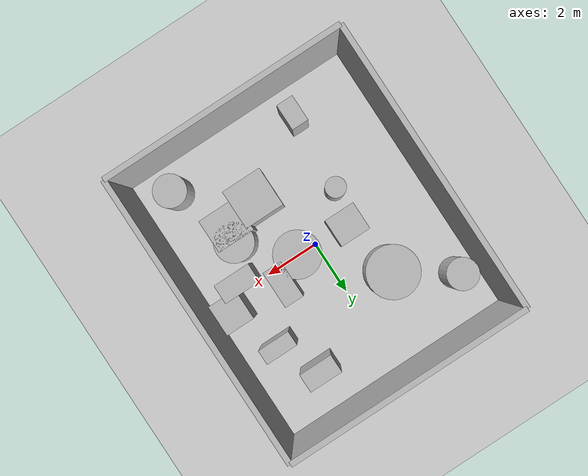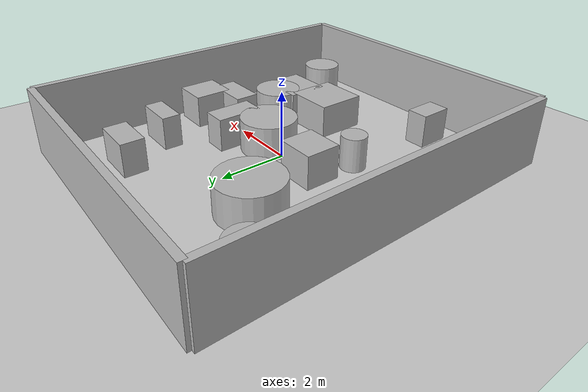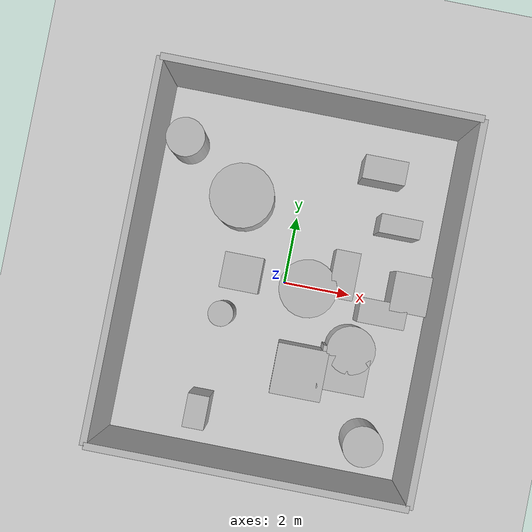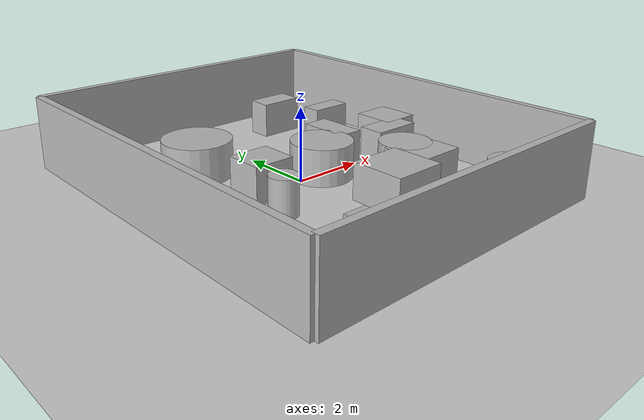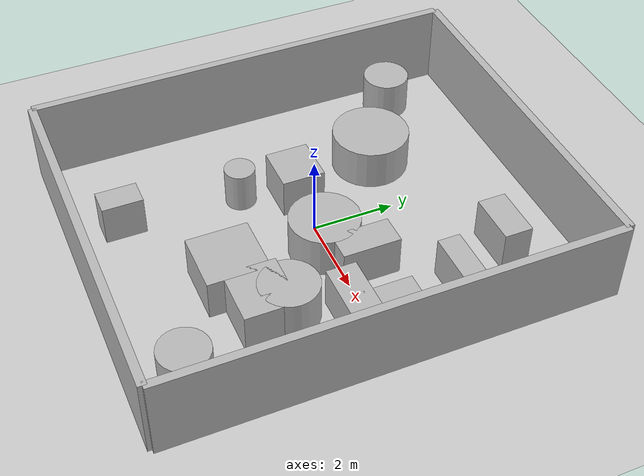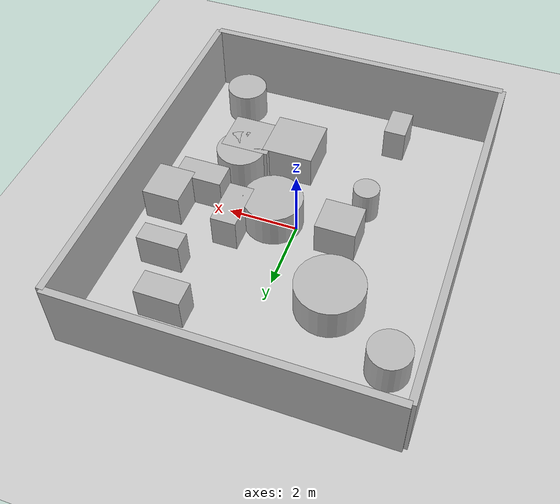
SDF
<?xml version="1.0"?>
<sdf version="1.6">
  <world name="env_13">

    <include><uri>model://ground_plane</uri></include>
    <include><uri>model://sun</uri></include>

    <!-- WALLS -->
    <model name="wall_north"><static>true</static><pose>0 5.346675349737958 1 0 0 0</pose>
      <link name="link"><collision name="collision">
        <geometry><box><size>8.917031790374443 0.2 2</size></box></geometry>
      </collision><visual name="visual">
        <geometry><box><size>8.917031790374443 0.2 2</size></box></geometry>
      </visual></link>
    </model>

    <model name="wall_south"><static>true</static><pose>0 -5.346675349737958 1 0 0 0</pose>
      <link name="link"><collision name="collision">
        <geometry><box><size>8.917031790374443 0.2 2</size></box></geometry>
      </collision><visual name="visual">
        <geometry><box><size>8.917031790374443 0.2 2</size></box></geometry>
      </visual></link>
    </model>

    <model name="wall_east"><static>true</static><pose>4.4585158951872215 0 1 0 0 1.57</pose>
      <link name="link"><collision name="collision">
        <geometry><box><size>10.693350699475916 0.2 2</size></box></geometry>
      </collision><visual name="visual">
        <geometry><box><size>10.693350699475916 0.2 2</size></box></geometry>
      </visual></link>
    </model>

    <model name="wall_west"><static>true</static><pose>-4.4585158951872215 0 1 0 0 1.57</pose>
      <link name="link"><collision name="collision">
        <geometry><box><size>10.693350699475916 0.2 2</size></box></geometry>
      </collision><visual name="visual">
        <geometry><box><size>10.693350699475916 0.2 2</size></box></geometry>
      </visual></link>
    </model>

    <!-- SENSOR -->

    <model name="lidar_sensor">
      <static>true</static>
      <pose>-1.258986035168907 -2.886022029445282 0.4 0 0 0</pose>
      <link name="link">
        <sensor name="lidar" type="ray">
          <pose>0 0 0 0 0 0</pose>
          <visualize>true</visualize>
          <always_on>true</always_on>
          <update_rate>10</update_rate>
          <ray>
            <scan><horizontal>
              <samples>720</samples>
              <resolution>1</resolution>
              <min_angle>-3.14159</min_angle>
              <max_angle>3.14159</max_angle>
            </horizontal></scan>
            <range><min>0.15</min><max>20.0</max><resolution>0.01</resolution></range>
          </ray>
          <plugin name="lidar_plugin" filename="liblidar_plugin.so"/>
        </sensor>
      </link>
    </model>

    <!-- OBSTACLES -->

    <model name="obstacle_0">
      <static>true</static>
      <pose>-1.7746976430160841 -4.114248902695424 0.5 0 0 0</pose>
      <link name="link">
        <collision name="collision">
          <geometry><box><size>0.63 0.98 1.0</size></box></geometry>
        </collision>
        <visual name="visual">
          <geometry><box><size>0.63 0.98 1.0</size></box></geometry>
        </visual>
      </link>
    </model>

    <model name="obstacle_1">
      <static>true</static>
      <pose>0.9118473483718157 -2.4453495250645827 0.5 0 0 0</pose>
      <link name="link">
        <collision name="collision">
          <geometry><box><size>1.48 1.47 1.0</size></box></geometry>
        </collision>
        <visual name="visual">
          <geometry><box><size>1.48 1.47 1.0</size></box></geometry>
        </visual>
      </link>
    </model>

    <model name="obstacle_2">
      <static>true</static>
      <pose>-1.6720200939208603 2.213965612736419 0.5 0 0 0</pose>
      <link name="link">
        <collision name="collision">
          <geometry><cylinder><radius>0.94</radius><length>1.0</length></cylinder></geometry>
        </collision>
        <visual name="visual">
          <geometry><cylinder><radius>0.94</radius><length>1.0</length></cylinder></geometry>
        </visual>
      </link>
    </model>

    <model name="obstacle_3">
      <static>true</static>
      <pose>1.6528817698458287 0.5338300499809208 0.5 0 0 0</pose>
      <link name="link">
        <collision name="collision">
          <geometry><box><size>0.72 1.39 1.0</size></box></geometry>
        </collision>
        <visual name="visual">
          <geometry><box><size>0.72 1.39 1.0</size></box></geometry>
        </visual>
      </link>
    </model>

    <model name="obstacle_4">
      <static>true</static>
      <pose>0.6973834145712763 -0.046349652435988986 0.5 0 0 0</pose>
      <link name="link">
        <collision name="collision">
          <geometry><cylinder><radius>0.84</radius><length>1.0</length></cylinder></geometry>
        </collision>
        <visual name="visual">
          <geometry><cylinder><radius>0.84</radius><length>1.0</length></cylinder></geometry>
        </visual>
      </link>
    </model>

    <model name="obstacle_5">
      <static>true</static>
      <pose>2.9329088423874756 -0.34275506646404885 0.5 0 0 0</pose>
      <link name="link">
        <collision name="collision">
          <geometry><box><size>1.37 0.72 1.0</size></box></geometry>
        </collision>
        <visual name="visual">
          <geometry><box><size>1.37 0.72 1.0</size></box></geometry>
        </visual>
      </link>
    </model>

    <model name="obstacle_6">
      <static>true</static>
      <pose>2.2344879596124265 3.7215861955124607 0.5 0 0 0</pose>
      <link name="link">
        <collision name="collision">
          <geometry><box><size>1.25 0.69 1.0</size></box></geometry>
        </collision>
        <visual name="visual">
          <geometry><box><size>1.25 0.69 1.0</size></box></geometry>
        </visual>
      </link>
    </model>

    <model name="obstacle_7">
      <static>true</static>
      <pose>2.9723520409006117 2.209988925147501 0.5 0 0 0</pose>
      <link name="link">
        <collision name="collision">
          <geometry><box><size>1.2 0.55 1.0</size></box></geometry>
        </collision>
        <visual name="visual">
          <geometry><box><size>1.2 0.55 1.0</size></box></geometry>
        </visual>
      </link>
    </model>

    <model name="obstacle_8">
      <static>true</static>
      <pose>3.102546913714418 -4.180460328390795 0.5 0 0 0</pose>
      <link name="link">
        <collision name="collision">
          <geometry><cylinder><radius>0.59</radius><length>1.0</length></cylinder></geometry>
        </collision>
        <visual name="visual">
          <geometry><cylinder><radius>0.59</radius><length>1.0</length></cylinder></geometry>
        </visual>
      </link>
    </model>

    <model name="obstacle_9">
      <static>true</static>
      <pose>-3.5873381754277345 3.553317300116233 0.5 0 0 0</pose>
      <link name="link">
        <collision name="collision">
          <geometry><cylinder><radius>0.57</radius><length>1.0</length></cylinder></geometry>
        </collision>
        <visual name="visual">
          <geometry><cylinder><radius>0.57</radius><length>1.0</length></cylinder></geometry>
        </visual>
      </link>
    </model>

    <model name="obstacle_10">
      <static>true</static>
      <pose>2.2526581782431583 -1.5482655954549442 0.5 0 0 0</pose>
      <link name="link">
        <collision name="collision">
          <geometry><cylinder><radius>0.7</radius><length>1.0</length></cylinder></geometry>
        </collision>
        <visual name="visual">
          <geometry><cylinder><radius>0.7</radius><length>1.0</length></cylinder></geometry>
        </visual>
      </link>
    </model>

    <model name="obstacle_11">
      <static>true</static>
      <pose>3.6262001977335308 0.3649686633265805 0.5 0 0 0</pose>
      <link name="link">
        <collision name="collision">
          <geometry><box><size>1.07 1.15 1.0</size></box></geometry>
        </collision>
        <visual name="visual">
          <geometry><box><size>1.07 1.15 1.0</size></box></geometry>
        </visual>
      </link>
    </model>

    <model name="obstacle_12">
      <static>true</static>
      <pose>-1.2579212876790864 0.036738256232249356 0.5 0 0 0</pose>
      <link name="link">
        <collision name="collision">
          <geometry><box><size>1.13 1.04 1.0</size></box></geometry>
        </collision>
        <visual name="visual">
          <geometry><box><size>1.13 1.04 1.0</size></box></geometry>
        </visual>
      </link>
    </model>

    <model name="obstacle_13">
      <static>true</static>
      <pose>2.1565242114579197 -2.1664569483209837 0.5 0 0 0</pose>
      <link name="link">
        <collision name="collision">
          <geometry><box><size>1.4 1.25 1.0</size></box></geometry>
        </collision>
        <visual name="visual">
          <geometry><box><size>1.4 1.25 1.0</size></box></geometry>
        </visual>
      </link>
    </model>

    <model name="obstacle_14">
      <static>true</static>
      <pose>-1.6186486134273652 -1.226772563403141 0.5 0 0 0</pose>
      <link name="link">
        <collision name="collision">
          <geometry><cylinder><radius>0.37</radius><length>1.0</length></cylinder></geometry>
        </collision>
        <visual name="visual">
          <geometry><cylinder><radius>0.37</radius><length>1.0</length></cylinder></geometry>
        </visual>
      </link>
    </model>

  </world>
</sdf>
